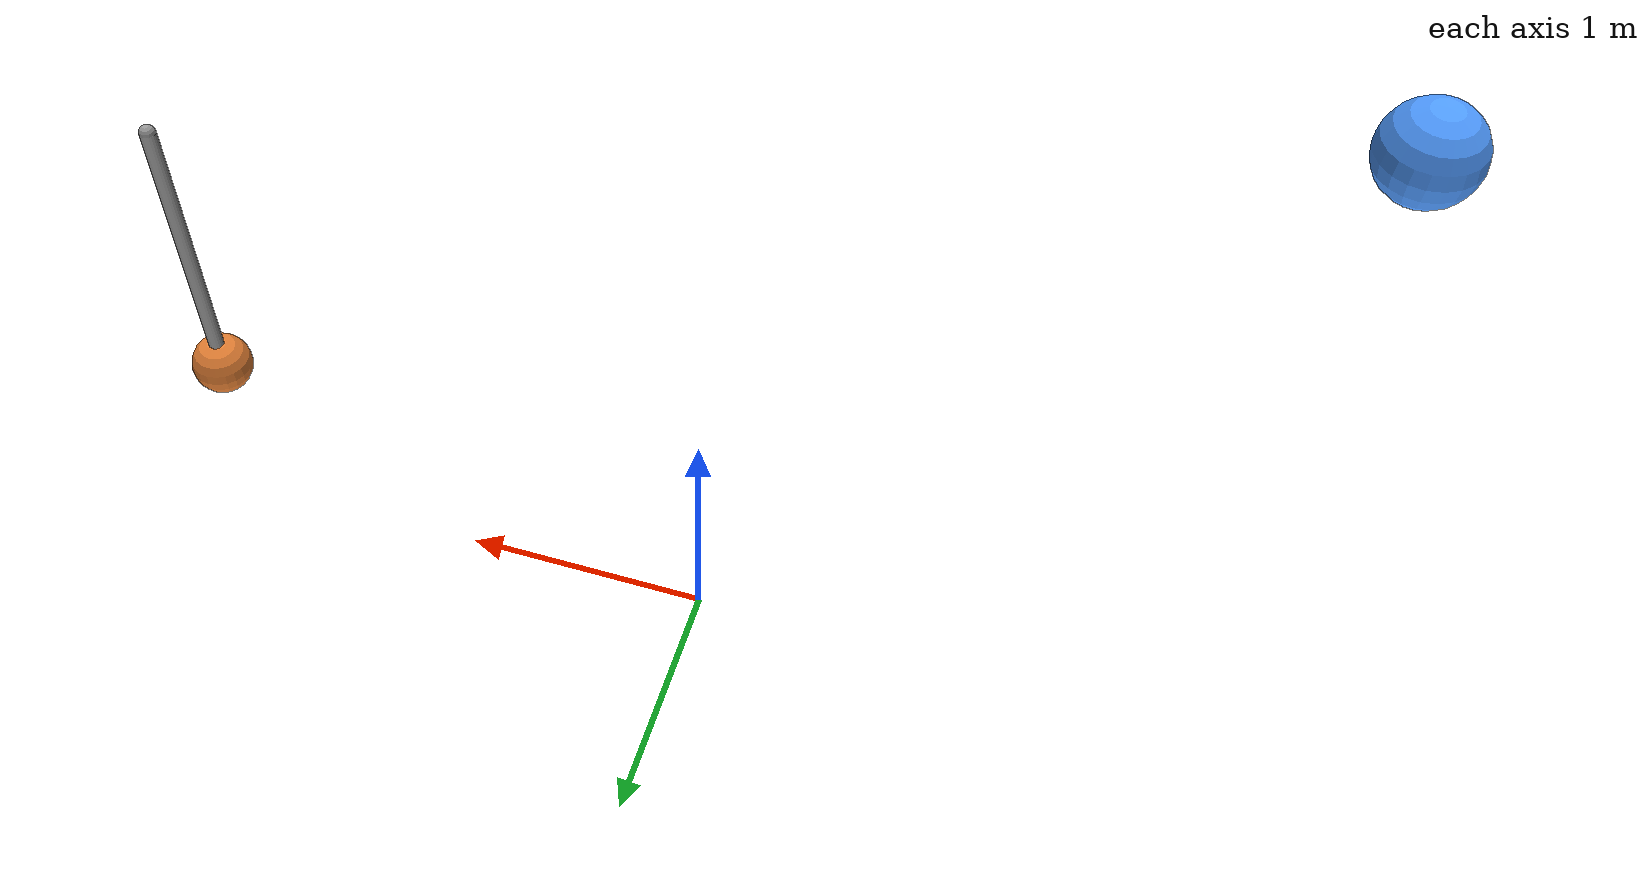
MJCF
<mujoco model="wind">
  <option gravity="0 0 0" timestep="0.002"
          density="10" viscosity="0.01" wind="0 0 0"/>
  <worldbody>
    <!-- Drifter: free sphere that falls + drifts in wind -->
    <body name="drifter" pos="-2 0 3">
      <freejoint name="drift_free"/>
      <geom name="drift_geom" type="sphere" size="0.15" mass="0.5"
            rgba="0.3 0.6 1.0 1"/>
    </body>

    <!-- Pendulum: hinge at pivot, rod + bob deflects in wind -->
    <body name="arm" pos="2 0 2">
      <joint name="hinge" type="hinge" axis="0 1 0" damping="0.3"/>
      <geom name="rod_geom" type="capsule" fromto="0 0 0 0 0 -1.2"
            size="0.03" mass="0.3" rgba="0.6 0.6 0.6 1"/>
      <body name="bob" pos="0 0 -1.2">
        <geom name="bob_geom" type="sphere" size="0.12" mass="0.5"
              rgba="0.9 0.5 0.2 1"/>
      </body>
    </body>
  </worldbody>
</mujoco>
